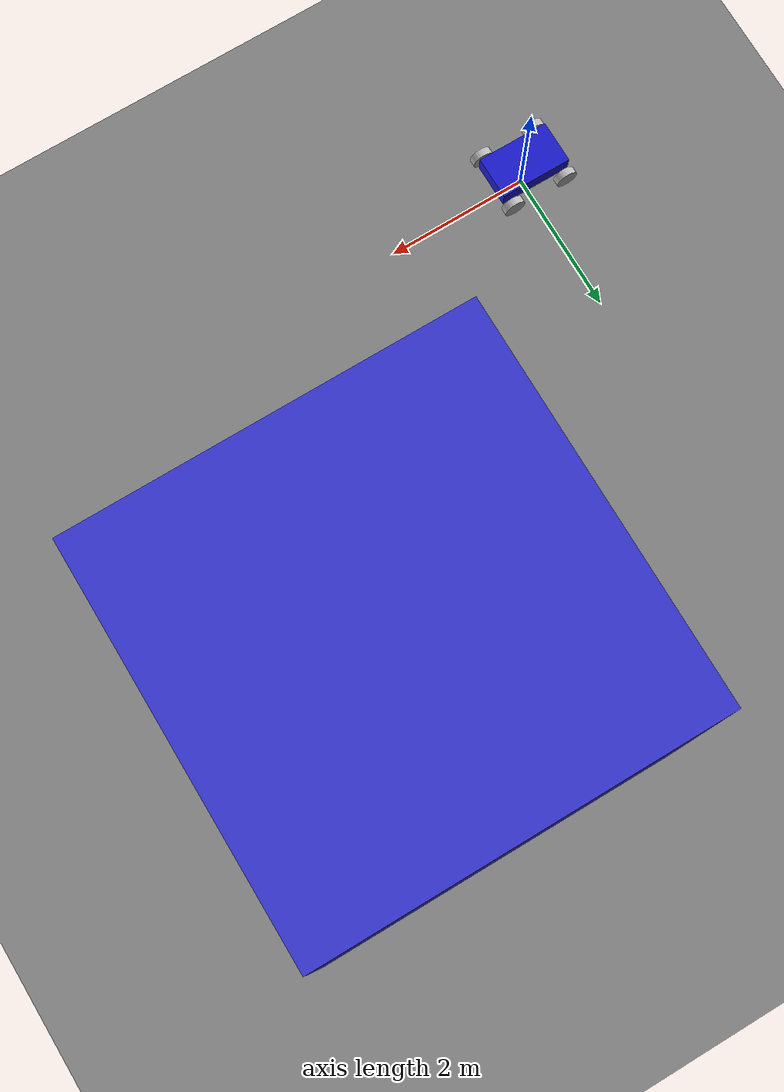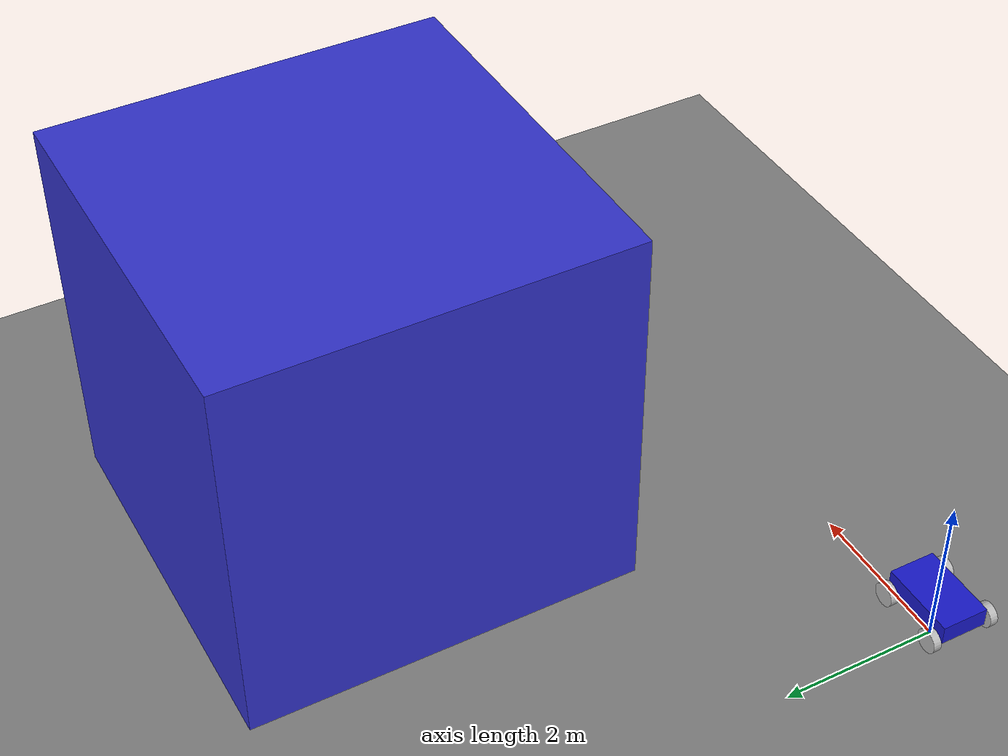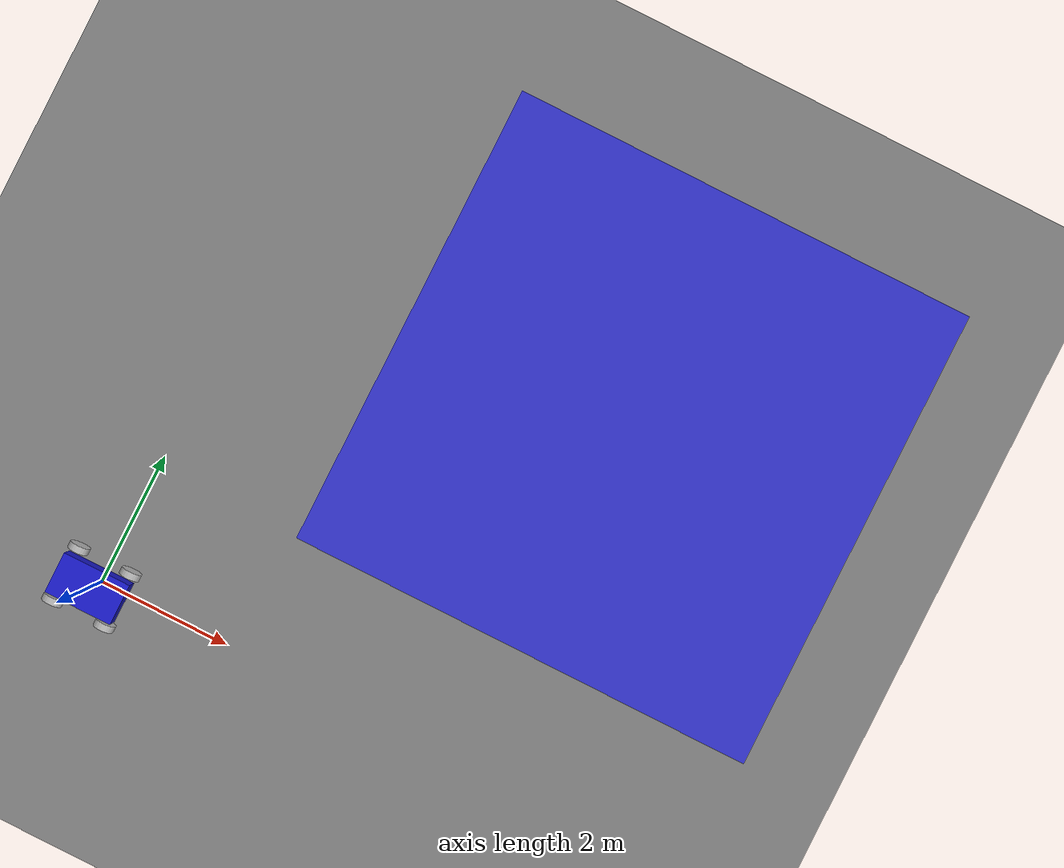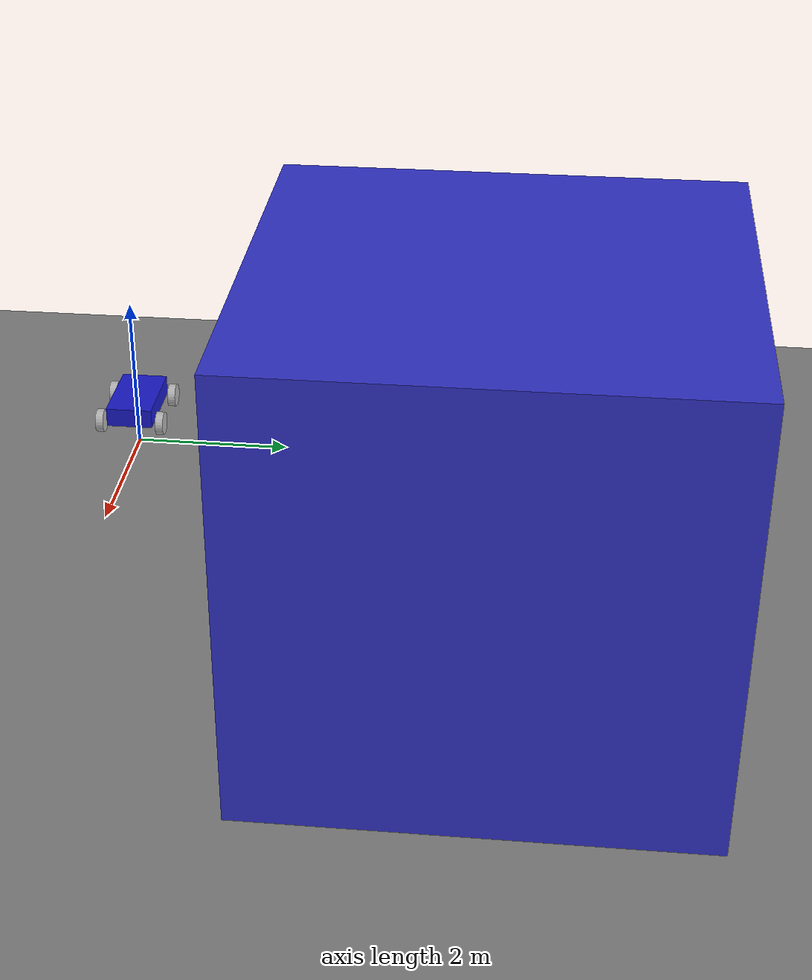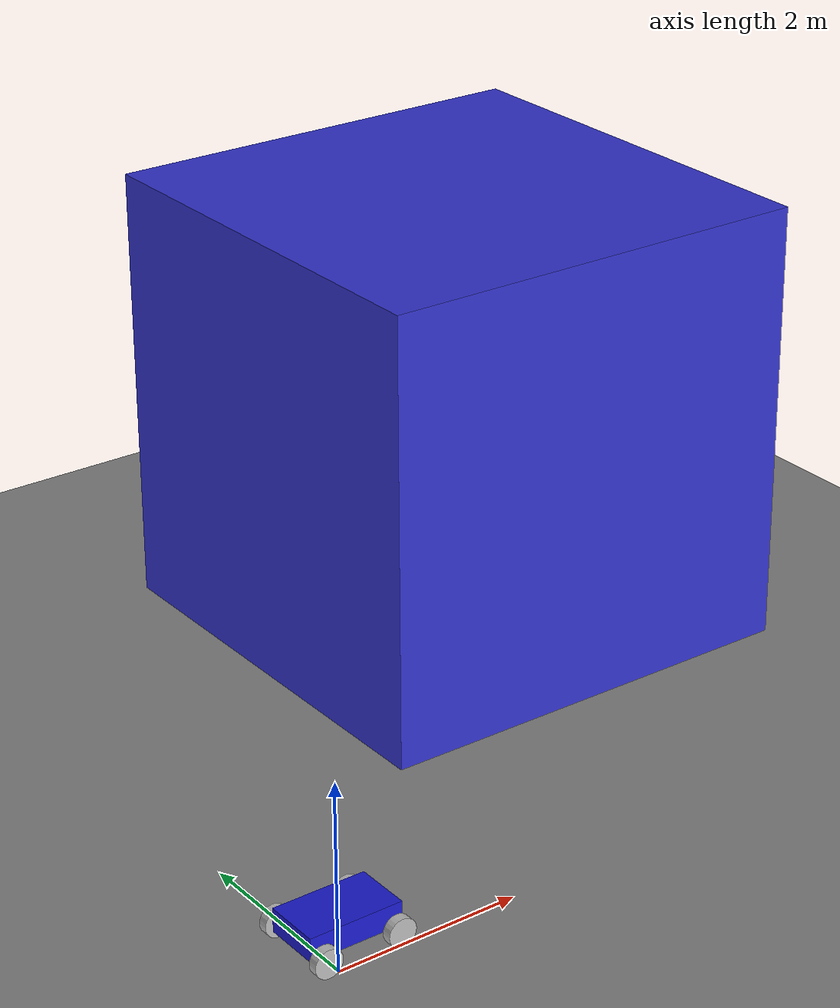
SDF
<?xml version="1.0" ?>
<sdf version="1.9">
  <world name="default">
    <physics name="stable_physics" type="ode">
      <max_step_size>0.001</max_step_size>
      <real_time_update_rate>1000</real_time_update_rate>
    </physics>

    <scene>
      <ambient>0.6 0.6 0.6 1</ambient>
      <background>0.8 0.8 0.8 1</background>
    </scene>

    <light name="sun" type="directional">
      <pose>0 0 10 0 0 0</pose>
      <diffuse>1 1 1 1</diffuse>
      <specular>0.2 0.2 0.2 1</specular>
      <direction>-0.5 0.5 -1</direction>
      <cast_shadows>false</cast_shadows>
    </light>

    <model name="ground_plane">
      <static>true</static>
      <link name="link">
        <collision name="collision">
          <geometry>
            <plane>
              <normal>0 0 1</normal>
              <size>50 50</size>
            </plane>
          </geometry>
        </collision>
        <visual name="visual">
          <geometry>
            <plane>
              <normal>0 0 1</normal>
              <size>50 50</size>
            </plane>
          </geometry>
          <material>
            <ambient>0.5 0.5 0.5 1</ambient>
            <diffuse>0.5 0.5 0.5 1</diffuse>
          </material>
        </visual>
      </link>
    </model>

    <model name = "immovable box">
      <static>true</static>
      <pose> 5 5 2.5 0 0 0 </pose>
      <link name = "link">
        <collision name="collision">
          <geometry>
            <box>
              <size>5 5 5</size>
            </box>
          </geometry>
        </collision>

        <visual name = "visual">
          <geometry>
            <box>
              <size>5 5 5</size>
            </box>
          </geometry>
          <material>
            <ambient>0.2 0.2 0.8 1</ambient>
            <diffuse>0.2 0.2 0.8 1</diffuse>
          </material>
        </visual>
      </link>
    </model>

    <include>
      <uri>model://testRobot1</uri>
      <pose>0 0 0.35 0 0 0</pose>
    </include>

    <plugin filename="gz-sim-imu-system"
        name="gz::sim::systems::Imu"/>

    <plugin filename="gz-sim-scene-broadcaster-system"
        name="gz::sim::systems::SceneBroadcaster"/>

    <plugin filename="gz-sim-physics-system"
        name="gz::sim::systems::Physics"/>

  </world>
</sdf>

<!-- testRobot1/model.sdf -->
<sdf version="1.9">
  <model name="testRobot1">
    <static>false</static>

    <link name="chassis">
      <pose>0 0 0.25 0 0 0</pose>
      <inertial>
        <mass>4.53592</mass>
        <inertia>
          <ixx>0.1597</ixx>
          <iyy>0.4016</iyy>
          <izz>0.5142</izz>
          <ixy>0</ixy>
          <ixz>0</ixz>
          <iyz>0</iyz>
        </inertia>
      </inertial>

      <collision name="collision">
        <geometry>
          <box>
            <size>1.0 0.6 0.25</size>
          </box>
        </geometry>
      </collision>

      <visual name="visual">
        <geometry>
          <box>
            <size>1.0 0.6 0.25</size>
          </box>
        </geometry>
        <material>
          <ambient>0.1 0.1 0.8 1</ambient>
          <diffuse>0.1 0.1 0.8 1</diffuse>
        </material>
      </visual>

      <sensor name="imu_sensor" type="imu">
        <topic>/imuTest</topic>
        <always_on>true</always_on>
        <update_rate>100</update_rate>
        <visualize>true</visualize>
      </sensor>
    </link>

    <link name="left_wheel">
      <pose relative_to="chassis">0.4 0.4 -0.1 1.5708 0 0</pose>
      <inertial>
        <mass>0.5</mass>
        <inertia>
          <ixx>0.00323</ixx>
          <iyy>0.00323</iyy>
          <izz>0.00563</izz>
          <ixy>0</ixy>
          <ixz>0</ixz>
          <iyz>0</iyz>
        </inertia>
      </inertial>

      <collision name="collision">
        <geometry>
          <cylinder>
            <radius>0.15</radius>
            <length>0.1</length>
          </cylinder>
        </geometry>
        <surface>
          <friction>
            <ode>
              <mu>2.0</mu>
              <mu2>0.1</mu2>
            </ode>
          </friction>
        </surface>
      </collision>

      <visual name="visual">
        <geometry>
          <cylinder>
            <radius>0.15</radius>
            <length>0.1</length>
          </cylinder>
        </geometry>
      </visual>
    </link>

    <link name="right_wheel">
      <pose relative_to="chassis">0.4 -0.4 -0.1 1.5708 0 0</pose>
      <inertial>
        <mass>0.5</mass>
        <inertia>
          <ixx>0.00323</ixx>
          <iyy>0.00323</iyy>
          <izz>0.00563</izz>
          <ixy>0</ixy>
          <ixz>0</ixz>
          <iyz>0</iyz>
        </inertia>
      </inertial>

      <collision name="collision">
        <geometry>
          <cylinder>
            <radius>0.15</radius>
            <length>0.1</length>
          </cylinder>
        </geometry>
        <surface>
          <friction>
            <ode>
              <mu>2.0</mu>
              <mu2>0.1</mu2>
            </ode>
          </friction>
        </surface>
      </collision>

      <visual name="visual">
        <geometry>
          <cylinder>
            <radius>0.15</radius>
            <length>0.1</length>
          </cylinder>
        </geometry>
      </visual>
    </link>

    <link name="rear_left_wheel">
      <pose relative_to="chassis">-0.4 0.4 -0.1 1.5708 0 0</pose>
      <inertial>
        <mass>0.5</mass>
        <inertia>
          <ixx>0.00323</ixx>
          <iyy>0.00323</iyy>
          <izz>0.00563</izz>
          <ixy>0</ixy>
          <ixz>0</ixz>
          <iyz>0</iyz>
        </inertia>
      </inertial>

      <collision name="collision">
        <geometry>
          <cylinder>
            <radius>0.15</radius>
            <length>0.1</length>
          </cylinder>
        </geometry>
        <surface>
          <friction>
            <ode>
              <mu>2.0</mu>
              <mu2>0.1</mu2>
            </ode>
          </friction>
        </surface>
      </collision>

      <visual name="visual">
        <geometry>
          <cylinder>
            <radius>0.15</radius>
            <length>0.1</length>
          </cylinder>
        </geometry>
      </visual>
    </link>

    <link name="rear_right_wheel">
      <pose relative_to="chassis">-0.4 -0.4 -0.1 1.5708 0 0</pose>
      <inertial>
        <mass>0.5</mass>
        <inertia>
          <ixx>0.00323</ixx>
          <iyy>0.00323</iyy>
          <izz>0.00563</izz>
          <ixy>0</ixy>
          <ixz>0</ixz>
          <iyz>0</iyz>
        </inertia>
      </inertial>

      <collision name="collision">
        <geometry>
          <cylinder>
            <radius>0.15</radius>
            <length>0.1</length>
          </cylinder>
        </geometry>
        <surface>
          <friction>
            <ode>
              <mu>2.0</mu>
              <mu2>0.1</mu2>
            </ode>
          </friction>
        </surface>
      </collision>

      <visual name="visual">
        <geometry>
          <cylinder>
            <radius>0.15</radius>
            <length>0.1</length>
          </cylinder>
        </geometry>
      </visual>
    </link>

    <joint name="left_wheel_joint" type="revolute">
      <pose relative_to="chassis">0.4 0.4 -0.1 0 0 0</pose>
      <parent>chassis</parent>
      <child>left_wheel</child>
      <axis>
        <xyz>0 1 0</xyz>
        <dynamics>
          <damping>0.05</damping>
          <friction>0.01</friction>
        </dynamics>
      </axis>
    </joint>

    <joint name="right_wheel_joint" type="revolute">
      <pose relative_to="chassis">0.4 -0.4 -0.1 0 0 0</pose>
      <parent>chassis</parent>
      <child>right_wheel</child>
      <axis>
        <xyz>0 1 0</xyz>
        <dynamics>
          <damping>0.05</damping>
          <friction>0.01</friction>
        </dynamics>
      </axis>
    </joint>

    <joint name="back_left_wheel_joint" type="revolute">
      <parent>chassis</parent>
      <child>rear_left_wheel</child>
      <axis>
        <xyz>0 0 -1</xyz>
        <dynamics>
          <damping>0.05</damping>
          <friction>0.01</friction>
        </dynamics>
      </axis>
    </joint>

    <joint name="back_right_wheel_joint" type="revolute">
      <parent>chassis</parent>
      <child>rear_right_wheel</child>
      <axis>
        <xyz>0 0 -1</xyz>
        <dynamics>
          <damping>0.05</damping>
          <friction>0.01</friction>
        </dynamics>
      </axis>
    </joint>

    <plugin filename="libTankDrivePlugin"
            name="TankDrivePlugin">
      <topic>/tank_cmd</topic>
      <rpm>600</rpm>
    </plugin>
  </model>
</sdf>
